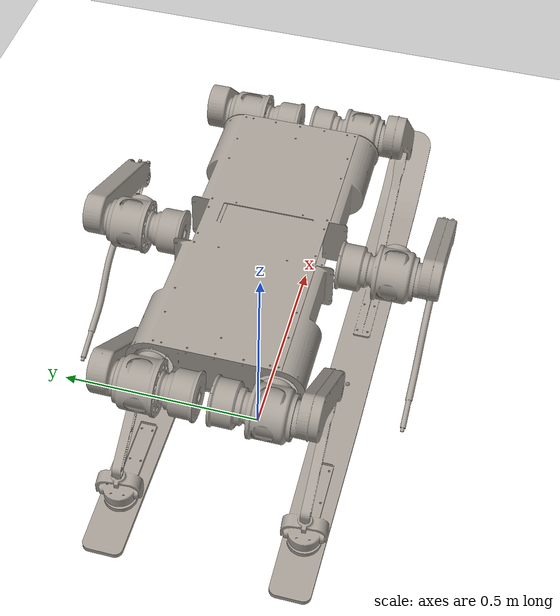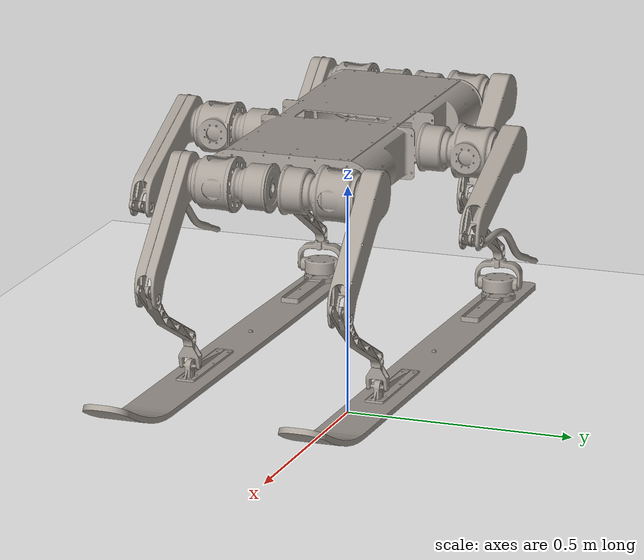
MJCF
<mujoco model="SkiDog">
  <compiler angle="radian" autolimits="true"/>
  <size njmax="500" nconmax="1000"/>
  <option timestep="0.002" iterations="50" tolerance="1e-10" solver="Newton" jacobian="dense" cone="elliptic" gravity="0 0 0" />
  <!-- gravity 1 0 -5 -->

  <default>
    <joint ref="0" armature="0.02"/>
    <geom condim="3" material="matgeom"/>
    <motor ctrlrange="-1.0 1.0" ctrllimited="true"/>
  </default>

  <visual>
    <map force="0.1" zfar="30"/>
    <rgba haze="0.15 0.25 0.35 1"/>
    <quality shadowsize="2048"/>
    <global offwidth="800" offheight="800"/>
  </visual>

  <asset>
    <mesh name="base" file="meshes/base2.STL"/>
    <mesh name="thigh" file="meshes/thigh.STL"/>
    <mesh name="thigh_r" file="meshes/thigh_right.STL"/>
    <mesh name="foot" file="meshes/foot.STL"/>
    <mesh name="midfoot" file="meshes/mdfoot.STL"/>
    <mesh name="THIGH_1" file="meshes/THIGH_1.STL"/>
    <mesh name="kuan" file="meshes/kuan.STL"/>
    <mesh name="jiao" file="meshes/jiaojie.STL"/>
    <mesh name="leg" file="meshes/leg.STL"/>
    <mesh name="skiboard" file="meshes/skiboard.STL"/>
    <texture type="skybox" builtin="gradient" rgb1="0.3 0.5 0.7" rgb2="0 0 0" width="512" height="512" />
    <texture name="texplane" type="2d" builtin="checker" rgb1="1 1 1 " rgb2="1 1 1 " width="512" height="512" mark="cross" markrgb=".8 .8 .8" />
    <texture name="texgeom" type="cube" builtin="flat" mark="cross" width="127" height="1278" rgb1="0.8 0.6 0.4" rgb2="0.8 0.6 0.4" markrgb="1 1 1" random="0.01"/>
    <material name="matplane" reflectance="0.3" texture="texplane" texrepeat="1 1" texuniform="true" rgba="0.5 0.5 0.5 1"/>
    <material name="matgeom" texture="texgeom" texuniform="true" rgba="0.8 0.6 .4 1"/>

  </asset>

  <worldbody>
    <geom name="floor" pos="0 0 0" size="0 0 0.25" type="plane" friction="1 0.005 0.0001" material="matplane" rgba="1 1 1 0.5" condim="1"/>
    <light directional="true" diffuse=".4 .4 .4" specular="0.1 0.1 0.1" pos="0 0 5.0" dir="0 0 -1" castshadow="false" />
    <light directional="true" diffuse=".6 .6 .6" specular="0.2 0.2 0.2" pos="0 0 4" dir="0 0 -1" />

    <body name="base" pos="0 0 0.55" euler="3.14 0 3.14">
      <geom name="base" type="mesh" rgba="0.64706 0.61961 0.58824 1" mesh="base"/>
      <joint name="float_base" type="free" stiffness="0" damping="0" frictionloss="0" armature="0"/>

      <body name="hip_lf" pos="-0.408 0.0656 -0.053" euler="0 0 -1.57">
        <geom name="hip_lf" type="mesh" rgba="0.64706 0.61961 0.58824 1" mesh="kuan" euler="-0.3408 0 0"/>
        <joint name="j_hip_lf" type="hinge" pos="-0.05979 0.058 0" axis="0 1 0" range="-3.14 3.14"/>
        <body name="thigh_lf" pos="-0.11000000 0 0" euler="0 -1.57  -1.65001">
          <joint name="j_thigh_lf" type="hinge" pos=" 0 0 0" axis="0 0 1" range="-3.14 3.14"/>
          <geom name="thigh_lf" type="mesh" rgba="0.64706 0.61961 0.58824 1" mesh="thigh_r" euler="-0 0 0"/>
          <body name="shank_lf" pos="0.18403318 0.21102585 0.03049800 " euler="-0 3.14 2.24 ">
            <geom name="shank_lf" type="mesh" rgba="0.64706 0.61961 0.58824 1" mesh="foot" euler="-0 0 0"/>
            <joint name="j_shank_lf" type="hinge" pos="0 0 0" axis="0 0 1" range="-3.14 3.14"/>
            <body name="hinge_lf" pos="-0.01 -0.29 0 " euler="-0 0 2.35 ">
              <geom name="hinge_lf" type="mesh" rgba="0.64706 0.61961 0.58824 1" mesh="jiao" euler="-1.57 0 0"/>
            </body>
          </body>
        </body>
      </body>

      <body name="hip_lm" pos="-0.002 0.2206 -0.053" euler="3.14 0 1.57">
        <geom name="hip_lm" type="mesh" rgba="0.64706 0.61961 0.58824 1" mesh="kuan" euler="-0.3408 0 0"/>
        <joint name="j_hip_lm" type="hinge" pos="-0.05979 0.058 0" axis="0 1 0" range="-3.14 3.14"/>
        <body name="thigh_lm" pos="-0.11000000 0 0" euler="0 -1.57 1.13499 ">
          <joint name="j_thigh_lm" type="hinge" pos=" 0 0 0" axis="0 0 1" range="-3.14 3.14"/>
          <geom name="thigh_lm" type="mesh" rgba="0.64706 0.61961 0.58824 1" mesh="thigh_r" euler="-0 0 0"/>
          <body name="shank_lm" pos="0.18403318 0.21102585 0.03049800 " euler="-0 3.14 1.5 ">
            <geom name="shank_lm" type="mesh" rgba="0.64706 0.61961 0.58824 1" mesh="midfoot" euler="-0 0 0" condim="1"/>
            <joint name="j_shank_lm" type="hinge" pos="0 0 0" axis="0 0 1" range="-3.14 3.14"/>
          </body>
        </body>
      </body>

      <body name="hip_lb" pos="0.408 0.0656 -0.053" euler="0 3.14 -1.57">
        <geom name="hip_lb" type="mesh" rgba="0.64706 0.61961 0.58824 1" mesh="kuan" euler="-0.3408 0 0"/>
        <joint name="j_hip_lb" type="hinge" pos="-0.05979 0.058 0" axis="0 1 0" range="-3.14 3.14"/>
        <body name="thigh_lb" pos="-0.11000000 0 0" euler="0 -1.57 1.39215 ">
          <joint name="j_thigh_lb" type="hinge" pos=" 0 0 0" axis="0 0 1" range="-3.14 3.14"/>
          <geom name="thigh_lb" type="mesh" rgba="0.64706 0.61961 0.58824 1" mesh="thigh_r" euler="-0 0 0"/>
          <body name="shank_lb" pos="0.18403318 0.21102585 0.03049800 " euler="-0 3.14 2.19 ">
            <geom name="shank_lb" type="mesh" rgba="0.64706 0.61961 0.58824 1" mesh="foot" euler="-0 0 0"/>
            <joint name="j_shank_lb" type="hinge" pos="0 0 0" axis="0 0 1" range="-3.14 3.14"/>
            <body name="board_lb" pos="0.344 -0.028 0 " euler="0 0 2.355 ">
              <geom name="board_lb" type="mesh" rgba="0.64706 0.61961 0.58824 1" mesh="skiboard" euler="-0 -1.57 0" condim="1"/>
              <site name="site1" pos="0 0 0" />
            </body>
          </body>
        </body>
      </body>

      <body name="hip_rb" pos="0.408 -0.0656 -0.053" euler="0 0 1.57">
        <geom name="hip_rb" type="mesh" rgba="0.64706 0.61961 0.58824 1" mesh="kuan" euler="-0.3408 0 0"/>
        <joint name="j_hip_rb" type="hinge" pos="-0.05979 0.058 0" axis="0 1 0" range="-3.14 3.14"/>
        <body name="thigh_rb" pos="-0.11000000 0 0" euler="-0 1.57 -2.84284 ">
          <joint name="j_thigh_rb" type="hinge" pos="0 0 0" axis="0 0 1" range="-3.14 3.14"/>
          <geom name="thigh_rb" type="mesh" rgba="0.64706 0.61961 0.58824 1" mesh="THIGH_1" euler="-0 0 0"/>
          <body name="shank_rb" pos="0.10341258 -0.26020345 -0.03050000 " euler="-0 3.14 -2.0425 ">
            <geom name="shank_rb" type="mesh" rgba="0.64706 0.61961 0.58824 1" mesh="foot" euler="-0 0 0"/>
            <joint name="j_shank_rb" type="hinge" pos="0 0 0" axis="0 0 1" range="-3.14 3.14"/>
            <body name="board_rb" pos="0.344 -0.028 0 " euler="0 0 2.355 ">
              <geom name="board_rb" type="mesh" rgba="0.64706 0.61961 0.58824 1" mesh="skiboard" euler="-0 -1.57 0" condim="1"/>
              <site name="site2" pos="0 0 0" />
            </body>
          </body>
        </body>
      </body>

      <body name="hip_rm" pos="-0.002 -0.2206 -0.053" euler="0 0 1.57">
        <geom name="hip_rm" type="mesh" rgba="0.64706 0.61961 0.58824 1" mesh="kuan" euler="-0.3408 0 0"/>
        <joint name="j_hip_rm" type="hinge" pos="-0.05979 0.058 0" axis="0 1 0" range="-3.14 3.14"/>
        <body name="thigh_rm" pos="-0.11000000 0 0" euler="-0 1.57 -3.1 ">
          <joint name="j_thigh_rm" type="hinge" pos="0 0 0" axis="0 0 1" range="-3.14 3.14"/>
          <geom name="thigh_rm" type="mesh" rgba="0.64706 0.61961 0.58824 1" mesh="THIGH_1" euler="-0 0 0"/>
          <body name="shank_rm" pos="0.10341258 -0.26020345 -0.03050000 " euler="-0 3.14 -2.73 ">
            <geom name="shank_rm" type="mesh" rgba="0.64706 0.61961 0.58824 1" mesh="midfoot" euler="-0 0 0" condim="1"/>
            <joint name="j_shank_rm" type="hinge" pos="0 0 0" axis="0 0 1" range="-3.14 3.14"/>
          </body>
        </body>
      </body>

      <body name="hip_rf" pos="-0.408 -0.0656 -0.053" euler="0 3.14 1.57">
        <geom name="hip_rf" type="mesh" rgba="0.64706 0.61961 0.58824 1" mesh="kuan" euler="-0.3408 0 0"/>
        <joint name="j_hip_rf" type="hinge" pos="-0.05979 0.058 0" axis="0 1 0" range="-3.14 3.14"/>
        <body name="thigh_rf" pos="-0.11000000 0 0" euler="-0 1.57 0.4 ">
          <joint name="j_thigh_rf" type="hinge" pos="0 0 0" axis="0 0 1" range="-3.14 3.14"/>
          <geom name="thigh_rf" type="mesh" rgba="0.64706 0.61961 0.58824 1" mesh="THIGH_1" euler="-0 0 0"/>
          <body name="shank_rf" pos="0.10341258 -0.26020345 -0.03050000 " euler="-0 3.14 -2 ">
            <geom name="shank_rf" type="mesh" rgba="0.64706 0.61961 0.58824 1" mesh="foot" euler="-0 0 0"/>
            <joint name="j_shank_rf" type="hinge" pos="0 0 0" axis="0 0 1" range="-3.14 3.14"/>
            <body name="hinge_rf" pos="-0.01 -0.29 0 " euler="-0 0 2.355 ">
              <geom name="hinge_rf" type="mesh" rgba="0.64706 0.61961 0.58824 1" mesh="jiao" euler="-1.57 0 0"/>
            </body>
          </body>
        </body>
      </body>
    </body>

    <body name="origin" pos="0 0 0">
    </body>

  </worldbody>

  <!--  并联-->
  <equality>
    <weld name="ski_l" body1="hinge_lf" body2="board_lb" torquescale="10" anchor="0.02841271 -0.34973950 0 " solref="-50000 -100"/>
    <weld name="ski_r" body1="hinge_rf" body2="board_rb" torquescale="10" anchor="0.02841271 -0.34973950 0 " solref="-50000 -100"/>
  </equality>

  <!-- 接触消除 -->
  <contact>
    <exclude name="b_thigh_lb" body1="base" body2="thigh_lb"/>
    <exclude name="b_thigh_lf" body1="base" body2="thigh_lf"/>
    <exclude name="b_thigh_rb" body1="base" body2="thigh_rb"/>
    <exclude name="b_thigh_rf" body1="base" body2="thigh_rf"/>
    <exclude name="board_rm_hinge_rf" body1="board_rb" body2="hinge_rf"/>
    <exclude name="board_rm_shank_rf" body1="board_rb" body2="shank_rf"/>
    <exclude name="board_rm_hip_rb" body1="board_rb" body2="hip_rb"/>
    <exclude name="board_lm_hip_lb" body1="board_lb" body2="hip_lb"/>
    <exclude name="board_lm_hinge_lf" body1="board_lb" body2="hinge_lf"/>
    <exclude name="board_lm_shank_lf" body1="board_lb" body2="shank_lf"/>
  </contact>

  <actuator>
    <motor joint="j_hip_lf" name="m_hip_lf" gear="200"/>
    <motor joint="j_thigh_lf" name="m_thigh_lf" gear="200"/>
    <motor joint="j_shank_lf" name="m_shank_lf" gear="200"/>

    <motor joint="j_hip_lm" name="m_hip_lm" gear="200"/>
    <motor joint="j_thigh_lm" name="m_thigh_lm" gear="200"/>
    <motor joint="j_shank_lm" name="m_shank_lm" gear="200"/>

    <motor joint="j_hip_lb" name="m_hip_lb" gear="200"/>
    <motor joint="j_thigh_lb" name="m_thigh_lb" gear="200"/>
    <motor joint="j_shank_lb" name="m_shank_lb" gear="200"/>

    <motor joint="j_hip_rb" name="m_hip_rb" gear="200"/>
    <motor joint="j_thigh_rb" name="m_thigh_rb" gear="200"/>
    <motor joint="j_shank_rb" name="m_shank_rb" gear="200"/>

    <motor joint="j_hip_rm" name="m_hip_rm" gear="200"/>
    <motor joint="j_thigh_rm" name="m_thigh_rm" gear="200"/>
    <motor joint="j_shank_rm" name="m_shank_rm" gear="200"/>

    <motor joint="j_hip_rf" name="m_hip_rf" gear="200"/>
    <motor joint="j_thigh_rf" name="m_thigh_rf" gear="200"/>
    <motor joint="j_shank_rf" name="m_shank_rf" gear="200"/>

  </actuator>

  <sensor>
    <framequat objtype="site" objname="site1" />
    <framequat objtype="site" objname="site2" />
    <framelinvel objtype="site" objname="site1" />
    <framelinvel objtype="site" objname="site2" />
  </sensor>

</mujoco>
